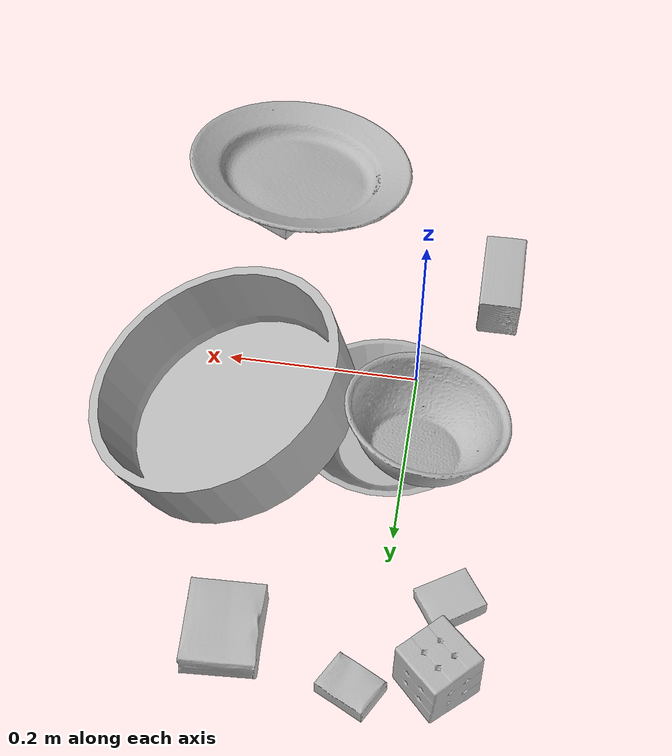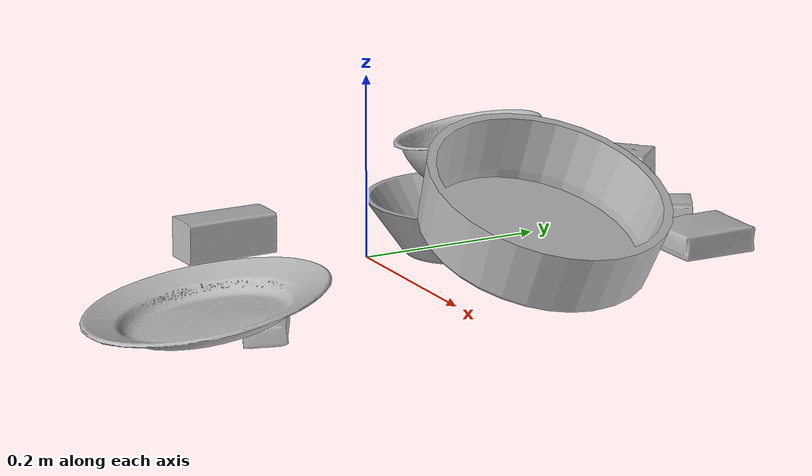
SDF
<sdf version="1.4">
  <world name="default">
    <light name="light1" type="point">
      <pose>0 0 1 0 0 0</pose>
      <diffuse>3 3 3 1</diffuse>
      <specular>3 3 3 1</specular>
    </light>
    <light name="light2" type="point">
      <pose>0 0.5 2 0 0 0</pose>
      <diffuse>1 1 1 1</diffuse>
      <specular>1 1 1 1</specular>
    </light>
    <light name="light3" type="point">
      <pose>0 0.5 2 0 0 0</pose>
      <diffuse>3 3 3 1</diffuse>
      <specular>3 3 3 1</specular>
    </light>
    <scene>
      <ambient>0.7 0.7 0.7</ambient>
    </scene>
    <model name="box1">
      <link name="link_box1">
        <collision name="default">
          <geometry>
            <mesh>
              <uri>model://gelatin_box/collision_meshes/collision.obj</uri>
              <scale>1.0 1.0 1.0</scale>
            </mesh>
          </geometry>
          <surface>
            <friction>
              <ode>
                <mu>0.5</mu>
                <mu2>0.5</mu2>
              </ode>
            </friction>
          <contact>
        <ode>
            <max_vel>0</max_vel>
            <min_depth>0.0001</min_depth>
            <kp>1e8</kp>
        </ode>
    </contact></surface>
        </collision>
        <visual name="default">
          <geometry>
            <mesh>
              <uri>model://gelatin_box/visual_meshes/visual.dae</uri>
              <scale>1.0 1.0 1.0</scale>
            </mesh>
          </geometry>
        </visual>
        <inertial>
          <mass>0.24885821342468262</mass>
          <pose>0.0004319618456065655 0.00011156872642459348 -0.0003640321083366871 -0.0010503721884538221 -0.004755817759936981 0.016440553883063976</pose>
          <inertia>
            <ixx>0.0001756736</ixx>
            <iyy>0.00012548274</iyy>
            <izz>0.00026741438</izz>
            <ixy>0</ixy>
            <ixz>0</ixz>
            <iyz>0</iyz>
          </inertia>
        </inertial>
      </link>
      <pose>0.14196106791496277 0.3307248055934906 0.015168316662311554 0.00559633428283915 -0.007303300943753175 -3.1019768529871556</pose>
    </model>
    <model name="box11">
      <link name="link_box11">
        <collision name="default">
          <geometry>
            <mesh>
              <uri>model://pudding_box/collision_meshes/collision.obj</uri>
              <scale>0.5 0.5 0.5</scale>
            </mesh>
          </geometry>
          <surface>
            <friction>
              <ode>
                <mu>0.5</mu>
                <mu2>0.5</mu2>
              </ode>
            </friction>
          <contact>
        <ode>
            <max_vel>0</max_vel>
            <min_depth>0.0001</min_depth>
            <kp>1e8</kp>
        </ode>
    </contact></surface>
        </collision>
        <visual name="default">
          <geometry>
            <mesh>
              <uri>model://pudding_box/visual_meshes/visual.dae</uri>
              <scale>0.5 0.5 0.5</scale>
            </mesh>
          </geometry>
        </visual>
        <inertial>
          <mass>0.031047143042087555</mass>
          <pose>0.00024474109522998333 0.00040339428232982755 -0.0002594413817860186 0.005213102716306955 -0.006603798272123425 0.020079828883677098</pose>
          <inertia>
            <ixx>8.774299e-06</ixx>
            <iyy>5.903411e-06</iyy>
            <izz>1.2957546e-05</izz>
            <ixy>0</ixy>
            <ixz>0</ixz>
            <iyz>0</iyz>
          </inertia>
        </inertial>
      </link>
      <pose>-0.06144893169403076 0.2668015658855438 0.009862903505563736 0.022348458546122402 -0.011391745206358384 2.1395510643034434</pose>
    </model>
    <model name="box2">
      <link name="link_box2">
        <collision name="default">
          <geometry>
            <mesh>
              <uri>model://rubiks_cube/collision_meshes/collision.obj</uri>
              <scale>1.0 1.0 1.0</scale>
            </mesh>
          </geometry>
          <surface>
            <friction>
              <ode>
                <mu>0.5</mu>
                <mu2>0.5</mu2>
              </ode>
            </friction>
          <contact>
        <ode>
            <max_vel>0</max_vel>
            <min_depth>0.0001</min_depth>
            <kp>1e8</kp>
        </ode>
    </contact></surface>
        </collision>
        <visual name="default">
          <geometry>
            <mesh>
              <uri>model://rubiks_cube/visual_meshes/visual.dae</uri>
              <scale>1.0 1.0 1.0</scale>
            </mesh>
          </geometry>
        </visual>
        <inertial>
          <mass>0.2106715589761734</mass>
          <pose>2.6721041649580002e-05 5.2569666877388954e-05 -7.264316536748083e-06 -0.05467273700930805 -0.09814071961497198 -0.03445608496414611</pose>
          <inertia>
            <ixx>0.0001164102</ixx>
            <iyy>0.000115867326</iyy>
            <izz>0.00011737483</izz>
            <ixy>0</ixy>
            <ixz>0</ixz>
            <iyz>0</iyz>
          </inertia>
        </inertial>
      </link>
      <pose>-0.057482995092868805 0.3491641879081726 0.028678935021162033 -5.0656523750578805e-06 -2.1835652354248124e-06 -2.3482359554164924</pose>
    </model>
    <model name="box21">
      <link name="link_box21">
        <collision name="default">
          <geometry>
            <mesh>
              <uri>model://wood_block/collision_meshes/collision.obj</uri>
              <scale>0.5 0.5 0.5</scale>
            </mesh>
          </geometry>
          <surface>
            <friction>
              <ode>
                <mu>0.5</mu>
                <mu2>0.5</mu2>
              </ode>
            </friction>
          <contact>
        <ode>
            <max_vel>0</max_vel>
            <min_depth>0.0001</min_depth>
            <kp>1e8</kp>
        </ode>
    </contact></surface>
        </collision>
        <visual name="default">
          <geometry>
            <mesh>
              <uri>model://wood_block/visual_meshes/visual.dae</uri>
              <scale>0.5 0.5 0.5</scale>
            </mesh>
          </geometry>
        </visual>
        <inertial>
          <mass>0.146076962351799</mass>
          <pose>-2.9066577553749084e-06 -0.000285404734313488 0.00013204291462898254 -0.052208177866913126 -0.0051926955252411455 -0.006861378006552687</pose>
          <inertia>
            <ixx>4.8868267e-05</ixx>
            <iyy>0.00015437487</iyy>
            <izz>0.00015379742</izz>
            <ixy>0</ixy>
            <ixz>0</ixz>
            <iyz>0</iyz>
          </inertia>
        </inertial>
      </link>
      <pose>-0.07843157649040222 -0.1294628530740738 0.0226292684674263 -0.005208501797949214 0.005718824733143411 1.574397697039386</pose>
    </model>
    <model name="box3">
      <link name="link_box3">
        <collision name="default">
          <geometry>
            <mesh>
              <uri>model://cracker_box/collision_meshes/collision.obj</uri>
              <scale>0.25 0.25 0.25</scale>
            </mesh>
          </geometry>
          <surface>
            <friction>
              <ode>
                <mu>0.5</mu>
                <mu2>0.5</mu2>
              </ode>
            </friction>
          <contact>
        <ode>
            <max_vel>0</max_vel>
            <min_depth>0.0001</min_depth>
            <kp>1e8</kp>
        </ode>
    </contact></surface>
        </collision>
        <visual name="default">
          <geometry>
            <mesh>
              <uri>model://cracker_box/visual_meshes/visual.dae</uri>
              <scale>0.25 0.25 0.25</scale>
            </mesh>
          </geometry>
        </visual>
        <inertial>
          <mass>0.0398951955139637</mass>
          <pose>0.0002366032567806542 6.358561950037256e-05 -0.0004257383698131889 -0.00031620768741309833 -0.011106487737478729 0.0025467957005107203</pose>
          <inertia>
            <ixx>6.342223e-06</ixx>
            <iyy>1.0472255e-05</iyy>
            <izz>1.494487e-05</izz>
            <ixy>0</ixy>
            <ixz>0</ixz>
            <iyz>0</iyz>
          </inertia>
        </inertial>
      </link>
      <pose>0.01808263547718525 0.367911159992218 0.009096029214560986 -0.014051309252402843 -0.005016305847640651 2.6521363077484756</pose>
    </model>
    <model name="box31">
      <link name="link_box31">
        <collision name="default">
          <geometry>
            <mesh>
              <uri>model://sugar_box/collision_meshes/collision.obj</uri>
              <scale>0.5 0.5 0.5</scale>
            </mesh>
          </geometry>
          <surface>
            <friction>
              <ode>
                <mu>0.5</mu>
                <mu2>0.5</mu2>
              </ode>
            </friction>
          <contact>
        <ode>
            <max_vel>0</max_vel>
            <min_depth>0.0001</min_depth>
            <kp>1e8</kp>
        </ode>
    </contact></surface>
        </collision>
        <visual name="default">
          <geometry>
            <mesh>
              <uri>model://sugar_box/visual_meshes/visual.dae</uri>
              <scale>0.5 0.5 0.5</scale>
            </mesh>
          </geometry>
        </visual>
        <inertial>
          <mass>0.051384337246418</mass>
          <pose>0.0005171863595023751 1.924554817378521e-05 -0.00018182402709499002 -0.00040462574757428057 0.0010506634050244472 0.0026153787892360275</pose>
          <inertia>
            <ixx>1.070332e-05</ixx>
            <iyy>3.4595334e-05</iyy>
            <izz>4.1414743e-05</izz>
            <ixy>0</ixy>
            <ixz>0</ixz>
            <iyz>0</iyz>
          </inertia>
        </inertial>
      </link>
      <pose>0.1973598748445511 -0.2184981107711792 0.012027381919324398 0.07960927593053164 -0.0069472935865630345 -0.4984139729750384</pose>
    </model>
    <model name="plate1">
      <link name="link_plate1">
        <collision name="default">
          <geometry>
            <mesh>
              <uri>model://plate/collision_meshes/collision.obj</uri>
              <scale>1.0 1.0 1.0</scale>
            </mesh>
          </geometry>
          <surface>
            <friction>
              <ode>
                <mu>0.5</mu>
                <mu2>0.5</mu2>
              </ode>
            </friction>
          <contact>
        <ode>
            <max_vel>0</max_vel>
            <min_depth>0.0001</min_depth>
            <kp>1e8</kp>
        </ode>
    </contact></surface>
        </collision>
        <visual name="default">
          <geometry>
            <mesh>
              <uri>model://plate/visual_meshes/visual.dae</uri>
              <scale>1.0 1.0 1.0</scale>
            </mesh>
          </geometry>
        </visual>
        <inertial>
          <mass>0.18845537304878235</mass>
          <pose>-0.0006044640904292464 0.00027825849247165024 -0.0010561994276940823 0.0022188128524267426 -0.0032254640251278745 0.45260123674794867</pose>
          <inertia>
            <ixx>0.0008815983</ixx>
            <iyy>0.00087316614</iyy>
            <izz>0.001724274</izz>
            <ixy>0</ixy>
            <ixz>0</ixz>
            <iyz>0</iyz>
          </inertia>
        </inertial>
      </link>
      <pose>0.16750408709049225 -0.2701514959335327 0.026678767055273056 0.008140618102351452 -0.17208543630082004 1.0381141081317542</pose>
    </model>
    <model name="bowl1">
      <link name="link_bowl1">
        <collision name="default">
          <geometry>
            <mesh>
              <uri>model://bowl_a/collision_meshes/collision.obj</uri>
              <scale>1.0 1.0 1.0</scale>
            </mesh>
          </geometry>
          <surface>
            <friction>
              <ode>
                <mu>0.5</mu>
                <mu2>0.5</mu2>
              </ode>
            </friction>
          <contact>
        <ode>
            <max_vel>0</max_vel>
            <min_depth>0.0001</min_depth>
            <kp>1e8</kp>
        </ode>
    </contact></surface>
        </collision>
        <visual name="default">
          <geometry>
            <mesh>
              <uri>model://bowl_a/visual_meshes/visual.dae</uri>
              <scale>1.0 1.0 1.0</scale>
            </mesh>
          </geometry>
        </visual>
        <inertial>
          <mass>0.46761196851730347</mass>
          <pose>0.0002786737459246069 4.731199442176148e-05 -0.0013765295734629035 -0.0009805421566516771 -0.0010938164969012795 -0.19123134440759623</pose>
          <inertia>
            <ixx>0.0013313128</ixx>
            <iyy>0.0013394863</iyy>
            <izz>0.0023677913</izz>
            <ixy>0</ixy>
            <ixz>0</ixz>
            <iyz>0</iyz>
          </inertia>
        </inertial>
      </link>
      <pose>0.02175387740135193 0.09644269943237305 0.030386053025722504 2.089073637146979e-05 -4.311286005510916e-05 -3.0932885739760074</pose>
    </model>
    <model name="plate2">
      <link name="link_plate2">
        <collision name="default">
          <geometry>
            <mesh>
              <uri>model://pan_tefal/collision_meshes/collision.obj</uri>
              <scale>1.0 1.0 1.0</scale>
            </mesh>
          </geometry>
          <surface>
            <friction>
              <ode>
                <mu>0.5</mu>
                <mu2>0.5</mu2>
              </ode>
            </friction>
          <contact>
        <ode>
            <max_vel>0</max_vel>
            <min_depth>0.0001</min_depth>
            <kp>1e8</kp>
        </ode>
    </contact></surface>
        </collision>
        <visual name="default">
          <geometry>
            <mesh>
              <uri>model://pan_tefal/visual_meshes/visual.dae</uri>
              <scale>1.0 1.0 1.0</scale>
            </mesh>
          </geometry>
        </visual>
        <inertial>
          <mass>0.7360396385192871</mass>
          <pose>-0.00018002057913690805 3.2791922421893105e-05 -0.00851493515074253 0.0008190284364517867 -0.0003301440136962699 -0.3318532577359739</pose>
          <inertia>
            <ixx>0.0050808466</ixx>
            <iyy>0.005113603</iyy>
            <izz>0.00935286</izz>
            <ixy>0</ixy>
            <ixz>0</ixz>
            <iyz>0</iyz>
          </inertia>
        </inertial>
      </link>
      <pose>0.178907111287117 0.11177226155996323 0.07780198752880096 -0.18544125861955263 -0.32848566075619573 -2.3881572257193526</pose>
    </model>
    <model name="bowl2">
      <link name="link_bowl2">
        <collision name="default">
          <geometry>
            <mesh>
              <uri>model://bowl/collision_meshes/collision.obj</uri>
              <scale>1.0 1.0 1.0</scale>
            </mesh>
          </geometry>
          <surface>
            <friction>
              <ode>
                <mu>0.5</mu>
                <mu2>0.5</mu2>
              </ode>
            </friction>
          <contact>
        <ode>
            <max_vel>0</max_vel>
            <min_depth>0.0001</min_depth>
            <kp>1e8</kp>
        </ode>
    </contact></surface>
        </collision>
        <visual name="default">
          <geometry>
            <mesh>
              <uri>model://bowl/visual_meshes/visual.dae</uri>
              <scale>1.0 1.0 1.0</scale>
            </mesh>
          </geometry>
        </visual>
        <inertial>
          <mass>0.11974068731069565</mass>
          <pose>0.00020445311383809894 -0.0010302052833139896 -0.0008042640401981771 -0.015764214972767723 0.014546668027170537 0.7140316235505751</pose>
          <inertia>
            <ixx>0.00027505384</ixx>
            <iyy>0.000268908</iyy>
            <izz>0.00046273507</izz>
            <ixy>0</ixy>
            <ixz>0</ixz>
            <iyz>0</iyz>
          </inertia>
        </inertial>
      </link>
      <pose>-0.01704072579741478 0.13593162596225739 0.09344689548015594 0.053961940636013575 -0.18818038814546612 0.44869257372486443</pose>
    </model>
  <physics type="ode">
      <max_contacts>50</max_contacts>
      <ode>
        <solver>
          <type>quick</type>
          <iters>75</iters>
        </solver>
        <constraints>
          <contact_max_correcting_vel>0</contact_max_correcting_vel>
          <contact_surface_layer>0</contact_surface_layer>
        </constraints>
      </ode>
    </physics></world>
</sdf>
